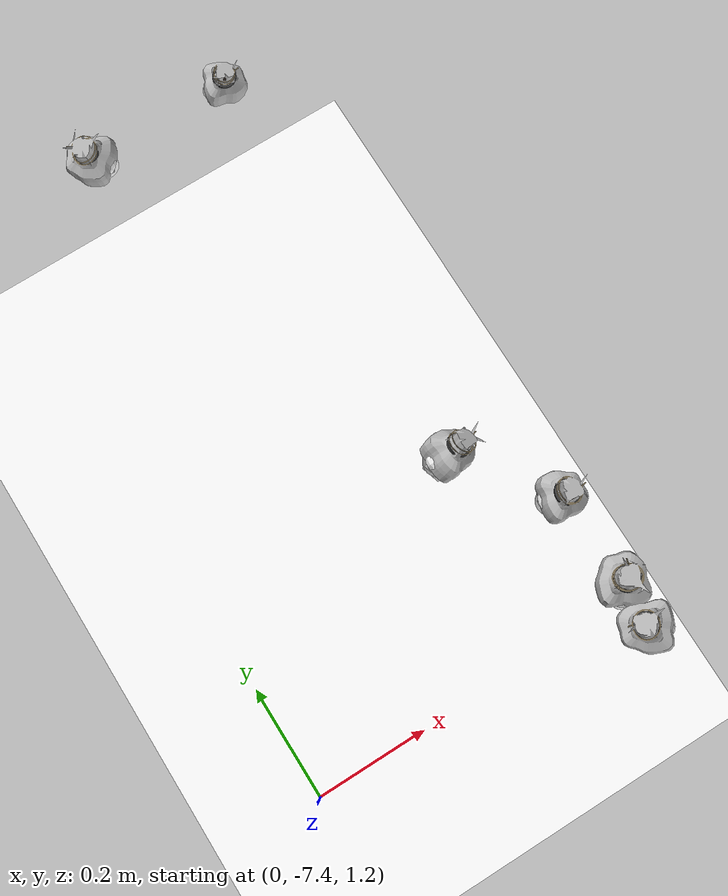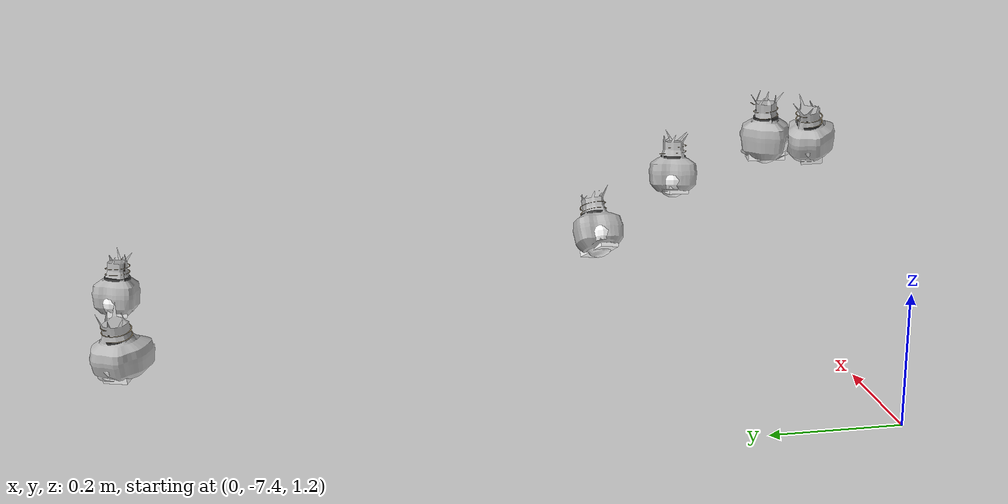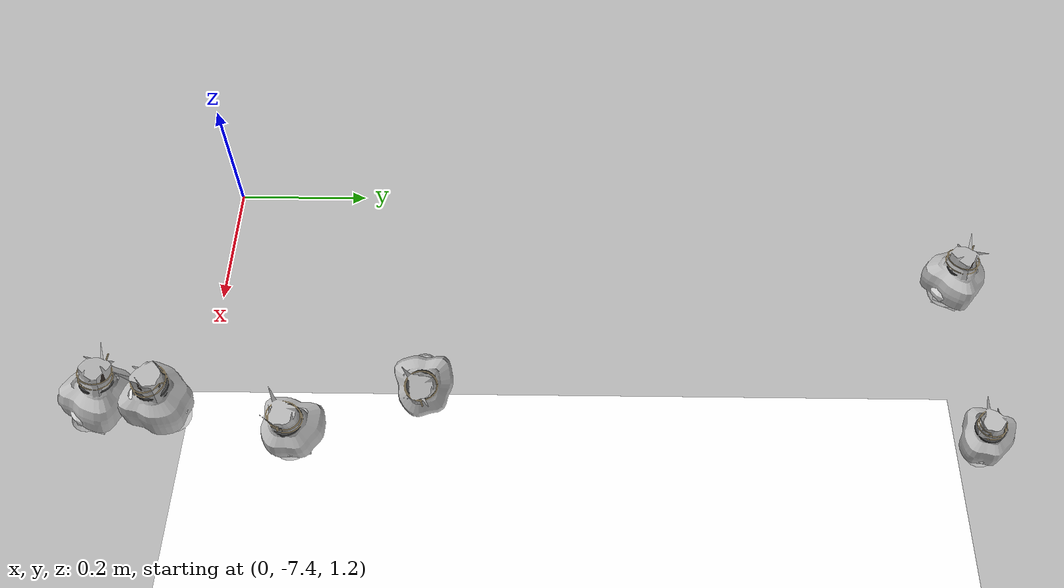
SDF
<sdf version="1.11">
 <world name="peach_orchard">
  <model name="ground">
   <static>true</static>
   <link name="link">
    <visual name="soil">
     <geometry><plane><normal>0 0 1</normal><size>32 22</size></plane></geometry>
     <material>
      <ambient>1 1 1 1</ambient>
      <diffuse>1 1 1 1</diffuse>
      <specular>0.1 0.1 0.1 1</specular>
      <pbr>
       <metal>
        <albedo_map>textures/soil_albedo.png</albedo_map>
        <normal_map type="tangent">textures/soil_normal.png</normal_map>
        <roughness>0.95</roughness>
        <metalness>0</metalness>
       </metal>
      </pbr>
     </material>
    </visual>
    <collision name="c_soil">
     <geometry><plane><normal>0 0 1</normal><size>32 22</size></plane></geometry>
    </collision>
   </link>
  </model>
  <model name="peach_tree_r2_t0_00">
   <pose>0.435282 -7.05626 1.3416 0 0.598774 0.0424847</pose>
   <static>true</static>
   <link name="bag">
    <visual name="bag_mesh">
     <pose>0 0 0.0439941 0 0 0</pose>
     <geometry>
      <mesh><uri>model://peach_sim/meshes/bagged_peach.glb</uri><scale>1.02222 1.11951 0.999866</scale></mesh>
     </geometry>
    </visual>
    <visual name="body">
     <pose>0 0 0.0259941 0 0 0</pose>
     <geometry><ellipsoid><radii>0.0383334 0.0291074 0.0280736</radii></ellipsoid></geometry>
     <material>
      <ambient>1 1 1 1</ambient>
      <diffuse>1 1 1 1</diffuse>
      <specular>0.1 0.1 0.1 1</specular>
      <pbr>
       <metal>
        <albedo_map>textures/paper_bag_albedo.png</albedo_map>
        <normal_map type="tangent">textures/paper_bag_normal.png</normal_map>
        <roughness>0.72</roughness>
        <metalness>0</metalness>
       </metal>
      </pbr>
     </material>
    </visual>
    <visual name="bottom_fold">
     <pose>0 0 0.012 0 0 0.35</pose>
     <geometry><box><size>0.0594168 0.0334735 0.022</size></box></geometry>
     <material>
      <ambient>1 1 1 1</ambient>
      <diffuse>1 1 1 1</diffuse>
      <specular>0.1 0.1 0.1 1</specular>
      <pbr>
       <metal>
        <albedo_map>textures/paper_bag_albedo.png</albedo_map>
        <normal_map type="tangent">textures/paper_bag_normal.png</normal_map>
        <roughness>0.8</roughness>
        <metalness>0</metalness>
       </metal>
      </pbr>
     </material>
    </visual>
    <visual name="fruit">
     <pose>0 0 0.0181329 0 0 0</pose>
     <geometry><sphere><radius>0.0250982</radius></sphere></geometry>
     <material>
      <ambient>1 1 1 1</ambient>
      <diffuse>1 1 1 1</diffuse>
      <specular>0.1 0.1 0.1 1</specular>
      <pbr>
       <metal>
        <albedo_map>textures/fruit_skin_albedo.png</albedo_map>
        <normal_map type="tangent">textures/fruit_skin_normal.png</normal_map>
        <roughness>0.55</roughness>
        <metalness>0</metalness>
       </metal>
      </pbr>
     </material>
    </visual>
    <visual name="neck">
     <pose>0 0 0.0609882 0 0 0</pose>
     <geometry><cylinder><radius>0.013</radius><length>0.018</length></cylinder></geometry>
     <material>
      <ambient>1 1 1 1</ambient>
      <diffuse>1 1 1 1</diffuse>
      <specular>0.1 0.1 0.1 1</specular>
      <pbr>
       <metal>
        <albedo_map>textures/paper_bag_albedo.png</albedo_map>
        <normal_map type="tangent">textures/paper_bag_normal.png</normal_map>
        <roughness>0.75</roughness>
        <metalness>0</metalness>
       </metal>
      </pbr>
     </material>
    </visual>
    <visual name="gather">
     <pose>0 0 0.0419882 0 0 0</pose>
     <geometry><cylinder><radius>0.019</radius><length>0.02</length></cylinder></geometry>
     <material>
      <ambient>1 1 1 1</ambient>
      <diffuse>1 1 1 1</diffuse>
      <specular>0.1 0.1 0.1 1</specular>
      <pbr>
       <metal>
        <albedo_map>textures/paper_bag_albedo.png</albedo_map>
        <normal_map type="tangent">textures/paper_bag_normal.png</normal_map>
        <roughness>0.8</roughness>
        <metalness>0</metalness>
       </metal>
      </pbr>
     </material>
    </visual>
    <visual name="inner_paper">
     <pose>0 0 0.0659882 0 0 0</pose>
     <geometry><cylinder><radius>0.01</radius><length>0.008</length></cylinder></geometry>
     <material>
      <ambient>0.180392 0.14902 0.133333 1</ambient>
      <diffuse>0.180392 0.14902 0.133333 1</diffuse>
      <specular>0.1 0.1 0.1 1</specular>
     </material>
    </visual>
    <visual name="wire_0">
     <pose>0 0 0.0559882 0 0 0</pose>
     <geometry><cylinder><radius>0.0205</radius><length>0.0035</length></cylinder></geometry>
     <material>
      <ambient>0.25 0.25 0.25 1</ambient>
      <diffuse>0.25 0.25 0.25 1</diffuse>
      <specular>0.1 0.1 0.1 1</specular>
     </material>
    </visual>
    <visual name="wire_1">
     <pose>0 0 0.0629882 0 0 0</pose>
     <geometry><cylinder><radius>0.0205</radius><length>0.0035</length></cylinder></geometry>
     <material>
      <ambient>0.25 0.25 0.25 1</ambient>
      <diffuse>0.25 0.25 0.25 1</diffuse>
      <specular>0.1 0.1 0.1 1</specular>
     </material>
    </visual>
    <visual name="wire_tail">
     <pose>0.01 0 0.0639882 0 0.521618 0</pose>
     <geometry><cylinder><radius>0.0012</radius><length>0.026</length></cylinder></geometry>
     <material>
      <ambient>0.25 0.25 0.25 1</ambient>
      <diffuse>0.25 0.25 0.25 1</diffuse>
      <specular>0.1 0.1 0.1 1</specular>
     </material>
    </visual>
    <collision name="c_body">
     <pose>0 0 0.0259941 0 0 0</pose>
     <geometry><cylinder><radius>0.0383334</radius><length>0.0519882</length></cylinder></geometry>
    </collision>
   </link>
  </model>
  <model name="peach_tree_r2_t0_01">
   <pose>0.55 -7.20635 1.39879 0 0.181242 -0.225247</pose>
   <static>true</static>
   <link name="bag">
    <visual name="bag_mesh">
     <pose>0 0 0.0425121 0 0 -0</pose>
     <geometry>
      <mesh><uri>model://peach_sim/meshes/bagged_peach.glb</uri><scale>0.93796 1.13229 0.966184</scale></mesh>
     </geometry>
    </visual>
    <visual name="body">
     <pose>0 0 0.0245121 0 0 0</pose>
     <geometry><ellipsoid><radii>0.0351735 0.0294395 0.0264731</radii></ellipsoid></geometry>
     <material>
      <ambient>1 1 1 1</ambient>
      <diffuse>1 1 1 1</diffuse>
      <specular>0.1 0.1 0.1 1</specular>
      <pbr>
       <metal>
        <albedo_map>textures/paper_bag_albedo.png</albedo_map>
        <normal_map type="tangent">textures/paper_bag_normal.png</normal_map>
        <roughness>0.72</roughness>
        <metalness>0</metalness>
       </metal>
      </pbr>
     </material>
    </visual>
    <visual name="bottom_fold">
     <pose>0 0 0.012 0 0 0.35</pose>
     <geometry><box><size>0.0545189 0.0338554 0.022</size></box></geometry>
     <material>
      <ambient>1 1 1 1</ambient>
      <diffuse>1 1 1 1</diffuse>
      <specular>0.1 0.1 0.1 1</specular>
      <pbr>
       <metal>
        <albedo_map>textures/paper_bag_albedo.png</albedo_map>
        <normal_map type="tangent">textures/paper_bag_normal.png</normal_map>
        <roughness>0.8</roughness>
        <metalness>0</metalness>
       </metal>
      </pbr>
     </material>
    </visual>
    <visual name="fruit">
     <pose>0 0 0.0178665 0 0 0</pose>
     <geometry><sphere><radius>0.0248211</radius></sphere></geometry>
     <material>
      <ambient>1 1 1 1</ambient>
      <diffuse>1 1 1 1</diffuse>
      <specular>0.1 0.1 0.1 1</specular>
      <pbr>
       <metal>
        <albedo_map>textures/fruit_skin_albedo.png</albedo_map>
        <normal_map type="tangent">textures/fruit_skin_normal.png</normal_map>
        <roughness>0.55</roughness>
        <metalness>0</metalness>
       </metal>
      </pbr>
     </material>
    </visual>
    <visual name="neck">
     <pose>0 0 0.0580242 0 0 0</pose>
     <geometry><cylinder><radius>0.013</radius><length>0.018</length></cylinder></geometry>
     <material>
      <ambient>1 1 1 1</ambient>
      <diffuse>1 1 1 1</diffuse>
      <specular>0.1 0.1 0.1 1</specular>
      <pbr>
       <metal>
        <albedo_map>textures/paper_bag_albedo.png</albedo_map>
        <normal_map type="tangent">textures/paper_bag_normal.png</normal_map>
        <roughness>0.75</roughness>
        <metalness>0</metalness>
       </metal>
      </pbr>
     </material>
    </visual>
    <visual name="gather">
     <pose>0 0 0.0390242 0 0 0</pose>
     <geometry><cylinder><radius>0.019</radius><length>0.02</length></cylinder></geometry>
     <material>
      <ambient>1 1 1 1</ambient>
      <diffuse>1 1 1 1</diffuse>
      <specular>0.1 0.1 0.1 1</specular>
      <pbr>
       <metal>
        <albedo_map>textures/paper_bag_albedo.png</albedo_map>
        <normal_map type="tangent">textures/paper_bag_normal.png</normal_map>
        <roughness>0.8</roughness>
        <metalness>0</metalness>
       </metal>
      </pbr>
     </material>
    </visual>
    <visual name="inner_paper">
     <pose>0 0 0.0630242 0 0 0</pose>
     <geometry><cylinder><radius>0.01</radius><length>0.008</length></cylinder></geometry>
     <material>
      <ambient>0.180392 0.14902 0.133333 1</ambient>
      <diffuse>0.180392 0.14902 0.133333 1</diffuse>
      <specular>0.1 0.1 0.1 1</specular>
     </material>
    </visual>
    <visual name="wire_0">
     <pose>0 0 0.0530242 0 0 0</pose>
     <geometry><cylinder><radius>0.0205</radius><length>0.0035</length></cylinder></geometry>
     <material>
      <ambient>0.25 0.25 0.25 1</ambient>
      <diffuse>0.25 0.25 0.25 1</diffuse>
      <specular>0.1 0.1 0.1 1</specular>
     </material>
    </visual>
    <visual name="wire_1">
     <pose>0 0 0.0600242 0 0 0</pose>
     <geometry><cylinder><radius>0.0205</radius><length>0.0035</length></cylinder></geometry>
     <material>
      <ambient>0.25 0.25 0.25 1</ambient>
      <diffuse>0.25 0.25 0.25 1</diffuse>
      <specular>0.1 0.1 0.1 1</specular>
     </material>
    </visual>
    <visual name="wire_tail">
     <pose>0.01 0 0.0610242 0 0.521618 0</pose>
     <geometry><cylinder><radius>0.0012</radius><length>0.026</length></cylinder></geometry>
     <material>
      <ambient>0.25 0.25 0.25 1</ambient>
      <diffuse>0.25 0.25 0.25 1</diffuse>
      <specular>0.1 0.1 0.1 1</specular>
     </material>
    </visual>
    <collision name="c_body">
     <pose>0 0 0.0245121 0 0 0</pose>
     <geometry><cylinder><radius>0.0351735</radius><length>0.0490242</length></cylinder></geometry>
    </collision>
   </link>
  </model>
  <model name="peach_tree_r2_t0_02">
   <pose>0.55 -7.36278 1.45 0 0.0200087 1.07959</pose>
   <static>true</static>
   <link name="bag">
    <visual name="bag_mesh">
     <pose>0 0 0.0472387 0 0 0</pose>
     <geometry>
      <mesh><uri>model://peach_sim/meshes/bagged_peach.glb</uri><scale>1.03545 1.14265 1.07361</scale></mesh>
     </geometry>
    </visual>
    <visual name="body">
     <pose>0 0 0.0292387 0 0 0</pose>
     <geometry><ellipsoid><radii>0.0388295 0.0297089 0.0315778</radii></ellipsoid></geometry>
     <material>
      <ambient>1 1 1 1</ambient>
      <diffuse>1 1 1 1</diffuse>
      <specular>0.1 0.1 0.1 1</specular>
      <pbr>
       <metal>
        <albedo_map>textures/paper_bag_albedo.png</albedo_map>
        <normal_map type="tangent">textures/paper_bag_normal.png</normal_map>
        <roughness>0.72</roughness>
        <metalness>0</metalness>
       </metal>
      </pbr>
     </material>
    </visual>
    <visual name="bottom_fold">
     <pose>0 0 0.012 0 0 0.35</pose>
     <geometry><box><size>0.0601858 0.0341652 0.022</size></box></geometry>
     <material>
      <ambient>1 1 1 1</ambient>
      <diffuse>1 1 1 1</diffuse>
      <specular>0.1 0.1 0.1 1</specular>
      <pbr>
       <metal>
        <albedo_map>textures/paper_bag_albedo.png</albedo_map>
        <normal_map type="tangent">textures/paper_bag_normal.png</normal_map>
        <roughness>0.8</roughness>
        <metalness>0</metalness>
       </metal>
      </pbr>
     </material>
    </visual>
    <visual name="fruit">
     <pose>0 0 0.0202456 0 0 0</pose>
     <geometry><sphere><radius>0.0272955</radius></sphere></geometry>
     <material>
      <ambient>1 1 1 1</ambient>
      <diffuse>1 1 1 1</diffuse>
      <specular>0.1 0.1 0.1 1</specular>
      <pbr>
       <metal>
        <albedo_map>textures/fruit_skin_albedo.png</albedo_map>
        <normal_map type="tangent">textures/fruit_skin_normal.png</normal_map>
        <roughness>0.55</roughness>
        <metalness>0</metalness>
       </metal>
      </pbr>
     </material>
    </visual>
    <visual name="neck">
     <pose>0 0 0.0674774 0 0 0</pose>
     <geometry><cylinder><radius>0.013</radius><length>0.018</length></cylinder></geometry>
     <material>
      <ambient>1 1 1 1</ambient>
      <diffuse>1 1 1 1</diffuse>
      <specular>0.1 0.1 0.1 1</specular>
      <pbr>
       <metal>
        <albedo_map>textures/paper_bag_albedo.png</albedo_map>
        <normal_map type="tangent">textures/paper_bag_normal.png</normal_map>
        <roughness>0.75</roughness>
        <metalness>0</metalness>
       </metal>
      </pbr>
     </material>
    </visual>
    <visual name="gather">
     <pose>0 0 0.0484774 0 0 0</pose>
     <geometry><cylinder><radius>0.019</radius><length>0.02</length></cylinder></geometry>
     <material>
      <ambient>1 1 1 1</ambient>
      <diffuse>1 1 1 1</diffuse>
      <specular>0.1 0.1 0.1 1</specular>
      <pbr>
       <metal>
        <albedo_map>textures/paper_bag_albedo.png</albedo_map>
        <normal_map type="tangent">textures/paper_bag_normal.png</normal_map>
        <roughness>0.8</roughness>
        <metalness>0</metalness>
       </metal>
      </pbr>
     </material>
    </visual>
    <visual name="inner_paper">
     <pose>0 0 0.0724774 0 0 0</pose>
     <geometry><cylinder><radius>0.01</radius><length>0.008</length></cylinder></geometry>
     <material>
      <ambient>0.180392 0.14902 0.133333 1</ambient>
      <diffuse>0.180392 0.14902 0.133333 1</diffuse>
      <specular>0.1 0.1 0.1 1</specular>
     </material>
    </visual>
    <visual name="wire_0">
     <pose>0 0 0.0624774 0 0 0</pose>
     <geometry><cylinder><radius>0.0205</radius><length>0.0035</length></cylinder></geometry>
     <material>
      <ambient>0.25 0.25 0.25 1</ambient>
      <diffuse>0.25 0.25 0.25 1</diffuse>
      <specular>0.1 0.1 0.1 1</specular>
     </material>
    </visual>
    <visual name="wire_1">
     <pose>0 0 0.0694774 0 0 0</pose>
     <geometry><cylinder><radius>0.0205</radius><length>0.0035</length></cylinder></geometry>
     <material>
      <ambient>0.25 0.25 0.25 1</ambient>
      <diffuse>0.25 0.25 0.25 1</diffuse>
      <specular>0.1 0.1 0.1 1</specular>
     </material>
    </visual>
    <visual name="wire_tail">
     <pose>0.01 0 0.0704774 0 0.521618 0</pose>
     <geometry><cylinder><radius>0.0012</radius><length>0.026</length></cylinder></geometry>
     <material>
      <ambient>0.25 0.25 0.25 1</ambient>
      <diffuse>0.25 0.25 0.25 1</diffuse>
      <specular>0.1 0.1 0.1 1</specular>
     </material>
    </visual>
    <collision name="c_body">
     <pose>0 0 0.0292387 0 0 0</pose>
     <geometry><cylinder><radius>0.0388295</radius><length>0.0584774</length></cylinder></geometry>
    </collision>
   </link>
  </model>
  <model name="peach_tree_r2_t0_03">
   <pose>0.55 -7.43964 1.45 0 0.216406 2.59915</pose>
   <static>true</static>
   <link name="bag">
    <visual name="bag_mesh">
     <pose>0 0 0.0422914 0 0 0</pose>
     <geometry>
      <mesh><uri>model://peach_sim/meshes/bagged_peach.glb</uri><scale>1.0471 1.14665 0.961168</scale></mesh>
     </geometry>
    </visual>
    <visual name="body">
     <pose>0 0 0.0242914 0 0 0</pose>
     <geometry><ellipsoid><radii>0.0392663 0.029813 0.0262347</radii></ellipsoid></geometry>
     <material>
      <ambient>1 1 1 1</ambient>
      <diffuse>1 1 1 1</diffuse>
      <specular>0.1 0.1 0.1 1</specular>
      <pbr>
       <metal>
        <albedo_map>textures/paper_bag_albedo.png</albedo_map>
        <normal_map type="tangent">textures/paper_bag_normal.png</normal_map>
        <roughness>0.72</roughness>
        <metalness>0</metalness>
       </metal>
      </pbr>
     </material>
    </visual>
    <visual name="bottom_fold">
     <pose>0 0 0.012 0 0 0.35</pose>
     <geometry><box><size>0.0608628 0.034285 0.022</size></box></geometry>
     <material>
      <ambient>1 1 1 1</ambient>
      <diffuse>1 1 1 1</diffuse>
      <specular>0.1 0.1 0.1 1</specular>
      <pbr>
       <metal>
        <albedo_map>textures/paper_bag_albedo.png</albedo_map>
        <normal_map type="tangent">textures/paper_bag_normal.png</normal_map>
        <roughness>0.8</roughness>
        <metalness>0</metalness>
       </metal>
      </pbr>
     </material>
    </visual>
    <visual name="fruit">
     <pose>0 0 0.0194489 0 0 0</pose>
     <geometry><sphere><radius>0.0264669</radius></sphere></geometry>
     <material>
      <ambient>1 1 1 1</ambient>
      <diffuse>1 1 1 1</diffuse>
      <specular>0.1 0.1 0.1 1</specular>
      <pbr>
       <metal>
        <albedo_map>textures/fruit_skin_albedo.png</albedo_map>
        <normal_map type="tangent">textures/fruit_skin_normal.png</normal_map>
        <roughness>0.55</roughness>
        <metalness>0</metalness>
       </metal>
      </pbr>
     </material>
    </visual>
    <visual name="neck">
     <pose>0 0 0.0575828 0 0 0</pose>
     <geometry><cylinder><radius>0.013</radius><length>0.018</length></cylinder></geometry>
     <material>
      <ambient>1 1 1 1</ambient>
      <diffuse>1 1 1 1</diffuse>
      <specular>0.1 0.1 0.1 1</specular>
      <pbr>
       <metal>
        <albedo_map>textures/paper_bag_albedo.png</albedo_map>
        <normal_map type="tangent">textures/paper_bag_normal.png</normal_map>
        <roughness>0.75</roughness>
        <metalness>0</metalness>
       </metal>
      </pbr>
     </material>
    </visual>
    <visual name="gather">
     <pose>0 0 0.0385828 0 0 0</pose>
     <geometry><cylinder><radius>0.019</radius><length>0.02</length></cylinder></geometry>
     <material>
      <ambient>1 1 1 1</ambient>
      <diffuse>1 1 1 1</diffuse>
      <specular>0.1 0.1 0.1 1</specular>
      <pbr>
       <metal>
        <albedo_map>textures/paper_bag_albedo.png</albedo_map>
        <normal_map type="tangent">textures/paper_bag_normal.png</normal_map>
        <roughness>0.8</roughness>
        <metalness>0</metalness>
       </metal>
      </pbr>
     </material>
    </visual>
    <visual name="inner_paper">
     <pose>0 0 0.0625828 0 0 0</pose>
     <geometry><cylinder><radius>0.01</radius><length>0.008</length></cylinder></geometry>
     <material>
      <ambient>0.180392 0.14902 0.133333 1</ambient>
      <diffuse>0.180392 0.14902 0.133333 1</diffuse>
      <specular>0.1 0.1 0.1 1</specular>
     </material>
    </visual>
    <visual name="wire_0">
     <pose>0 0 0.0525828 0 0 0</pose>
     <geometry><cylinder><radius>0.0205</radius><length>0.0035</length></cylinder></geometry>
     <material>
      <ambient>0.25 0.25 0.25 1</ambient>
      <diffuse>0.25 0.25 0.25 1</diffuse>
      <specular>0.1 0.1 0.1 1</specular>
     </material>
    </visual>
    <visual name="wire_1">
     <pose>0 0 0.0595828 0 0 0</pose>
     <geometry><cylinder><radius>0.0205</radius><length>0.0035</length></cylinder></geometry>
     <material>
      <ambient>0.25 0.25 0.25 1</ambient>
      <diffuse>0.25 0.25 0.25 1</diffuse>
      <specular>0.1 0.1 0.1 1</specular>
     </material>
    </visual>
    <visual name="wire_tail">
     <pose>0.01 0 0.0605828 0 0.521618 0</pose>
     <geometry><cylinder><radius>0.0012</radius><length>0.026</length></cylinder></geometry>
     <material>
      <ambient>0.25 0.25 0.25 1</ambient>
      <diffuse>0.25 0.25 0.25 1</diffuse>
      <specular>0.1 0.1 0.1 1</specular>
     </material>
    </visual>
    <collision name="c_body">
     <pose>0 0 0.0242914 0 0 0</pose>
     <geometry><cylinder><radius>0.0392663</radius><length>0.0485828</length></cylinder></geometry>
    </collision>
   </link>
  </model>
  <model name="peach_tree_r2_t0_05">
   <pose>0.227252 -6.30232 1.27 0 0.138553 2.37152</pose>
   <static>true</static>
   <link name="bag">
    <visual name="bag_mesh">
     <pose>0 0 0.0417086 0 0 0</pose>
     <geometry>
      <mesh><uri>model://peach_sim/meshes/bagged_peach.glb</uri><scale>1.07617 1.23723 0.947923</scale></mesh>
     </geometry>
    </visual>
    <visual name="body">
     <pose>0 0 0.0237086 0 0 0</pose>
     <geometry><ellipsoid><radii>0.0403563 0.0321681 0.0256053</radii></ellipsoid></geometry>
     <material>
      <ambient>1 1 1 1</ambient>
      <diffuse>1 1 1 1</diffuse>
      <specular>0.1 0.1 0.1 1</specular>
      <pbr>
       <metal>
        <albedo_map>textures/paper_bag_albedo.png</albedo_map>
        <normal_map type="tangent">textures/paper_bag_normal.png</normal_map>
        <roughness>0.72</roughness>
        <metalness>0</metalness>
       </metal>
      </pbr>
     </material>
    </visual>
    <visual name="bottom_fold">
     <pose>0 0 0.012 0 0 0.35</pose>
     <geometry><box><size>0.0625522 0.0369933 0.022</size></box></geometry>
     <material>
      <ambient>1 1 1 1</ambient>
      <diffuse>1 1 1 1</diffuse>
      <specular>0.1 0.1 0.1 1</specular>
      <pbr>
       <metal>
        <albedo_map>textures/paper_bag_albedo.png</albedo_map>
        <normal_map type="tangent">textures/paper_bag_normal.png</normal_map>
        <roughness>0.8</roughness>
        <metalness>0</metalness>
       </metal>
      </pbr>
     </material>
    </visual>
    <visual name="fruit">
     <pose>0 0 0.0172428 0 0 0</pose>
     <geometry><sphere><radius>0.0241725</radius></sphere></geometry>
     <material>
      <ambient>1 1 1 1</ambient>
      <diffuse>1 1 1 1</diffuse>
      <specular>0.1 0.1 0.1 1</specular>
      <pbr>
       <metal>
        <albedo_map>textures/fruit_skin_albedo.png</albedo_map>
        <normal_map type="tangent">textures/fruit_skin_normal.png</normal_map>
        <roughness>0.55</roughness>
        <metalness>0</metalness>
       </metal>
      </pbr>
     </material>
    </visual>
    <visual name="neck">
     <pose>0 0 0.0564172 0 0 0</pose>
     <geometry><cylinder><radius>0.013</radius><length>0.018</length></cylinder></geometry>
     <material>
      <ambient>1 1 1 1</ambient>
      <diffuse>1 1 1 1</diffuse>
      <specular>0.1 0.1 0.1 1</specular>
      <pbr>
       <metal>
        <albedo_map>textures/paper_bag_albedo.png</albedo_map>
        <normal_map type="tangent">textures/paper_bag_normal.png</normal_map>
        <roughness>0.75</roughness>
        <metalness>0</metalness>
       </metal>
      </pbr>
     </material>
    </visual>
    <visual name="gather">
     <pose>0 0 0.0374172 0 0 0</pose>
     <geometry><cylinder><radius>0.019</radius><length>0.02</length></cylinder></geometry>
     <material>
      <ambient>1 1 1 1</ambient>
      <diffuse>1 1 1 1</diffuse>
      <specular>0.1 0.1 0.1 1</specular>
      <pbr>
       <metal>
        <albedo_map>textures/paper_bag_albedo.png</albedo_map>
        <normal_map type="tangent">textures/paper_bag_normal.png</normal_map>
        <roughness>0.8</roughness>
        <metalness>0</metalness>
       </metal>
      </pbr>
     </material>
    </visual>
    <visual name="inner_paper">
     <pose>0 0 0.0614172 0 0 0</pose>
     <geometry><cylinder><radius>0.01</radius><length>0.008</length></cylinder></geometry>
     <material>
      <ambient>0.180392 0.14902 0.133333 1</ambient>
      <diffuse>0.180392 0.14902 0.133333 1</diffuse>
      <specular>0.1 0.1 0.1 1</specular>
     </material>
    </visual>
    <visual name="wire_0">
     <pose>0 0 0.0514172 0 0 0</pose>
     <geometry><cylinder><radius>0.0205</radius><length>0.0035</length></cylinder></geometry>
     <material>
      <ambient>0.25 0.25 0.25 1</ambient>
      <diffuse>0.25 0.25 0.25 1</diffuse>
      <specular>0.1 0.1 0.1 1</specular>
     </material>
    </visual>
    <visual name="wire_1">
     <pose>0 0 0.0584172 0 0 0</pose>
     <geometry><cylinder><radius>0.0205</radius><length>0.0035</length></cylinder></geometry>
     <material>
      <ambient>0.25 0.25 0.25 1</ambient>
      <diffuse>0.25 0.25 0.25 1</diffuse>
      <specular>0.1 0.1 0.1 1</specular>
     </material>
    </visual>
    <visual name="wire_tail">
     <pose>0.01 0 0.0594172 0 0.521618 0</pose>
     <geometry><cylinder><radius>0.0012</radius><length>0.026</length></cylinder></geometry>
     <material>
      <ambient>0.25 0.25 0.25 1</ambient>
      <diffuse>0.25 0.25 0.25 1</diffuse>
      <specular>0.1 0.1 0.1 1</specular>
     </material>
    </visual>
    <collision name="c_body">
     <pose>0 0 0.0237086 0 0 0</pose>
     <geometry><cylinder><radius>0.0403563</radius><length>0.0474172</length></cylinder></geometry>
    </collision>
   </link>
  </model>
  <model name="peach_tree_r2_t0_07">
   <pose>0.483915 -6.2973 1.27 0 0.102023 -0.413511</pose>
   <static>true</static>
   <link name="bag">
    <visual name="bag_mesh">
     <pose>0 0 0.0417939 0 0 -0</pose>
     <geometry>
      <mesh><uri>model://peach_sim/meshes/bagged_peach.glb</uri><scale>0.947504 1.01331 0.949861</scale></mesh>
     </geometry>
    </visual>
    <visual name="body">
     <pose>0 0 0.0237939 0 0 0</pose>
     <geometry><ellipsoid><radii>0.0355314 0.0263461 0.0256974</radii></ellipsoid></geometry>
     <material>
      <ambient>1 1 1 1</ambient>
      <diffuse>1 1 1 1</diffuse>
      <specular>0.1 0.1 0.1 1</specular>
      <pbr>
       <metal>
        <albedo_map>textures/paper_bag_albedo.png</albedo_map>
        <normal_map type="tangent">textures/paper_bag_normal.png</normal_map>
        <roughness>0.72</roughness>
        <metalness>0</metalness>
       </metal>
      </pbr>
     </material>
    </visual>
    <visual name="bottom_fold">
     <pose>0 0 0.012 0 0 0.35</pose>
     <geometry><box><size>0.0550737 0.030298 0.022</size></box></geometry>
     <material>
      <ambient>1 1 1 1</ambient>
      <diffuse>1 1 1 1</diffuse>
      <specular>0.1 0.1 0.1 1</specular>
      <pbr>
       <metal>
        <albedo_map>textures/paper_bag_albedo.png</albedo_map>
        <normal_map type="tangent">textures/paper_bag_normal.png</normal_map>
        <roughness>0.8</roughness>
        <metalness>0</metalness>
       </metal>
      </pbr>
     </material>
    </visual>
    <visual name="fruit">
     <pose>0 0 0.0192078 0 0 0</pose>
     <geometry><sphere><radius>0.0262161</radius></sphere></geometry>
     <material>
      <ambient>1 1 1 1</ambient>
      <diffuse>1 1 1 1</diffuse>
      <specular>0.1 0.1 0.1 1</specular>
      <pbr>
       <metal>
        <albedo_map>textures/fruit_skin_albedo.png</albedo_map>
        <normal_map type="tangent">textures/fruit_skin_normal.png</normal_map>
        <roughness>0.55</roughness>
        <metalness>0</metalness>
       </metal>
      </pbr>
     </material>
    </visual>
    <visual name="neck">
     <pose>0 0 0.0565878 0 0 0</pose>
     <geometry><cylinder><radius>0.013</radius><length>0.018</length></cylinder></geometry>
     <material>
      <ambient>1 1 1 1</ambient>
      <diffuse>1 1 1 1</diffuse>
      <specular>0.1 0.1 0.1 1</specular>
      <pbr>
       <metal>
        <albedo_map>textures/paper_bag_albedo.png</albedo_map>
        <normal_map type="tangent">textures/paper_bag_normal.png</normal_map>
        <roughness>0.75</roughness>
        <metalness>0</metalness>
       </metal>
      </pbr>
     </material>
    </visual>
    <visual name="gather">
     <pose>0 0 0.0375878 0 0 0</pose>
     <geometry><cylinder><radius>0.019</radius><length>0.02</length></cylinder></geometry>
     <material>
      <ambient>1 1 1 1</ambient>
      <diffuse>1 1 1 1</diffuse>
      <specular>0.1 0.1 0.1 1</specular>
      <pbr>
       <metal>
        <albedo_map>textures/paper_bag_albedo.png</albedo_map>
        <normal_map type="tangent">textures/paper_bag_normal.png</normal_map>
        <roughness>0.8</roughness>
        <metalness>0</metalness>
       </metal>
      </pbr>
     </material>
    </visual>
    <visual name="inner_paper">
     <pose>0 0 0.0615878 0 0 0</pose>
     <geometry><cylinder><radius>0.01</radius><length>0.008</length></cylinder></geometry>
     <material>
      <ambient>0.180392 0.14902 0.133333 1</ambient>
      <diffuse>0.180392 0.14902 0.133333 1</diffuse>
      <specular>0.1 0.1 0.1 1</specular>
     </material>
    </visual>
    <visual name="wire_0">
     <pose>0 0 0.0515878 0 0 0</pose>
     <geometry><cylinder><radius>0.0205</radius><length>0.0035</length></cylinder></geometry>
     <material>
      <ambient>0.25 0.25 0.25 1</ambient>
      <diffuse>0.25 0.25 0.25 1</diffuse>
      <specular>0.1 0.1 0.1 1</specular>
     </material>
    </visual>
    <visual name="wire_1">
     <pose>0 0 0.0585878 0 0 0</pose>
     <geometry><cylinder><radius>0.0205</radius><length>0.0035</length></cylinder></geometry>
     <material>
      <ambient>0.25 0.25 0.25 1</ambient>
      <diffuse>0.25 0.25 0.25 1</diffuse>
      <specular>0.1 0.1 0.1 1</specular>
     </material>
    </visual>
    <visual name="wire_tail">
     <pose>0.01 0 0.0595878 0 0.521618 0</pose>
     <geometry><cylinder><radius>0.0012</radius><length>0.026</length></cylinder></geometry>
     <material>
      <ambient>0.25 0.25 0.25 1</ambient>
      <diffuse>0.25 0.25 0.25 1</diffuse>
      <specular>0.1 0.1 0.1 1</specular>
     </material>
    </visual>
    <collision name="c_body">
     <pose>0 0 0.0237939 0 0 0</pose>
     <geometry><cylinder><radius>0.0355314</radius><length>0.0475878</length></cylinder></geometry>
    </collision>
   </link>
  </model>
 </world>
</sdf>
